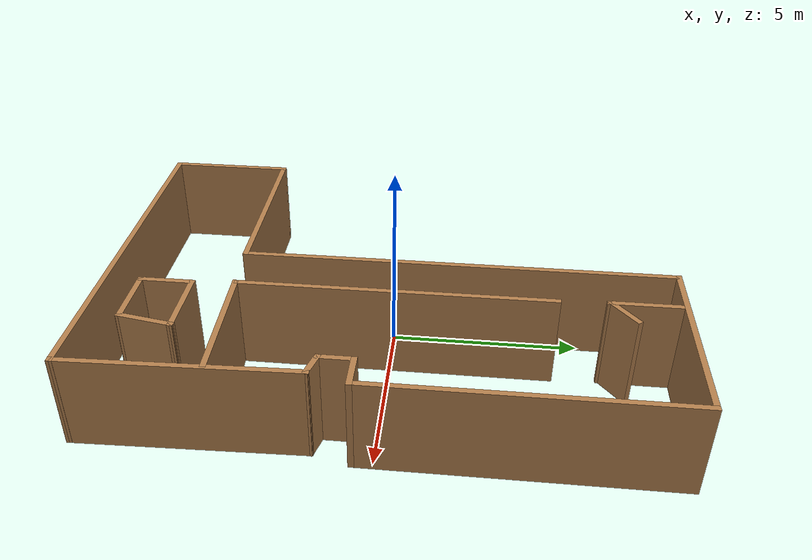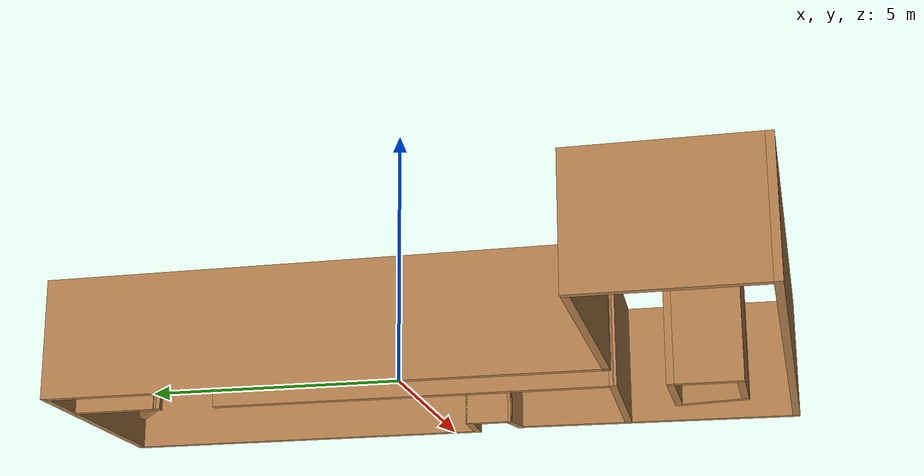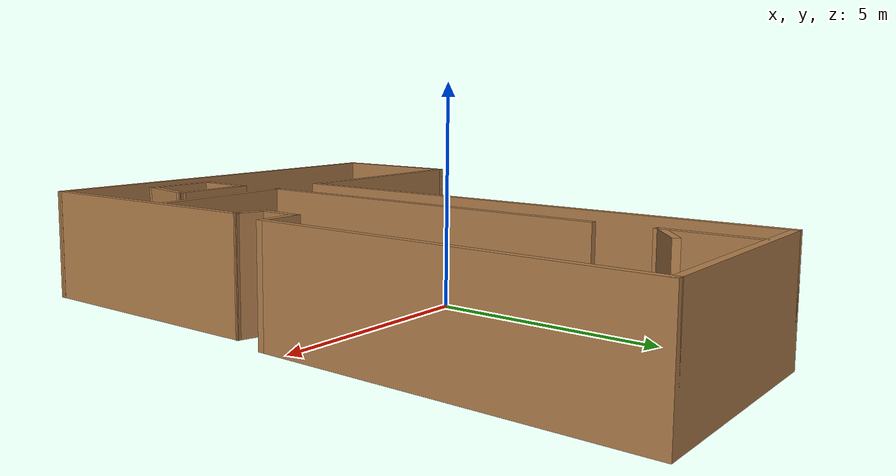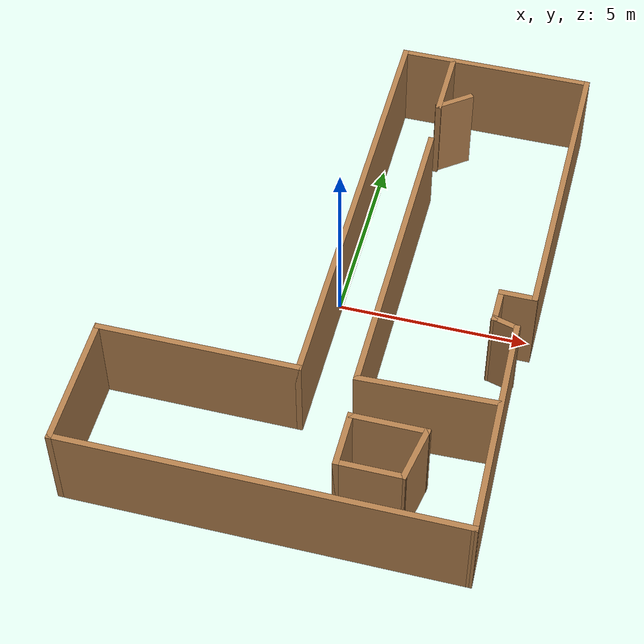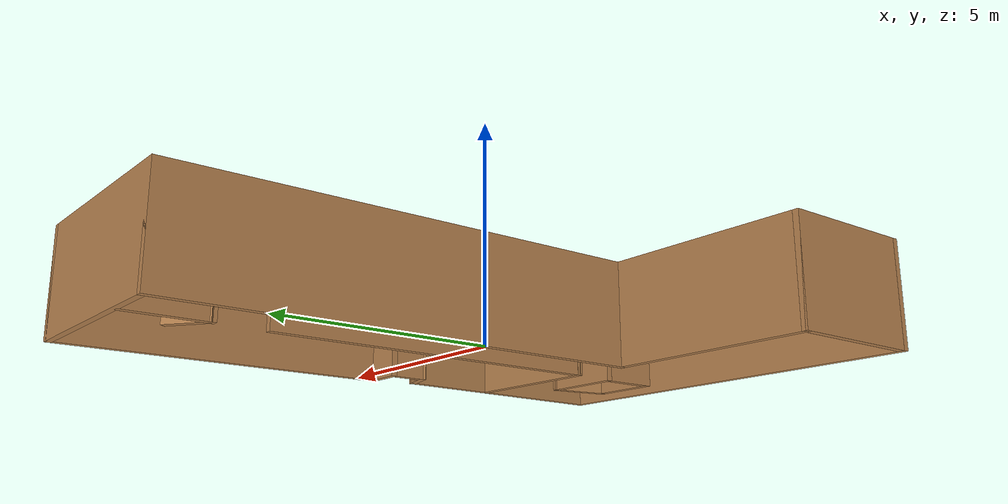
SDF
<?xml version='1.0'?>
<sdf version='1.6'>
  <model name='map_25'>
    <link name='Wall_0'>
      <pose frame=''>-0.05 -7.34892 0 0 -0 3.14159</pose>
      <self_collide>0</self_collide>
      <enable_wind>0</enable_wind>
      <kinematic>0</kinematic>
      <visual name='Wall_0_Visual'>
        <pose frame=''>0 0 1.25 0 -0 0</pose>
        <geometry>
          <box>
            <size>10.25 0.15 2.5</size>
          </box>
        </geometry>
        <material>
          <script>
            <uri>file://media/materials/scripts/gazebo.material</uri>
            <name>Gazebo/Wood</name>
          </script>
          <ambient>1 1 1 1</ambient>
          <shader type='pixel'/>
        </material>
        <meta>
          <layer>0</layer>
        </meta>
        <transparency>0</transparency>
        <cast_shadows>1</cast_shadows>
      </visual>
      <collision name='Wall_0_Collision'>
        <laser_retro>0</laser_retro>
        <max_contacts>10</max_contacts>
        <pose frame=''>0 0 1.25 0 -0 0</pose>
        <geometry>
          <box>
            <size>10.25 0.15 2.5</size>
          </box>
        </geometry>
        <surface>
          <friction>
            <ode>
              <mu>1</mu>
              <mu2>1</mu2>
              <fdir1>0 0 0</fdir1>
              <slip1>0</slip1>
              <slip2>0</slip2>
            </ode>
            <torsional>
              <coefficient>1</coefficient>
              <patch_radius>0</patch_radius>
              <surface_radius>0</surface_radius>
              <use_patch_radius>1</use_patch_radius>
              <ode>
                <slip>0</slip>
              </ode>
            </torsional>
          </friction>
          <bounce>
            <restitution_coefficient>0</restitution_coefficient>
            <threshold>1e+06</threshold>
          </bounce>
          <contact>
            <collide_without_contact>0</collide_without_contact>
            <collide_without_contact_bitmask>1</collide_without_contact_bitmask>
            <collide_bitmask>1</collide_bitmask>
            <ode>
              <soft_cfm>0</soft_cfm>
              <soft_erp>0.2</soft_erp>
              <kp>1e+13</kp>
              <kd>1</kd>
              <max_vel>0.01</max_vel>
              <min_depth>0</min_depth>
            </ode>
            <bullet>
              <split_impulse>1</split_impulse>
              <split_impulse_penetration_threshold>-0.01</split_impulse_penetration_threshold>
              <soft_cfm>0</soft_cfm>
              <soft_erp>0.2</soft_erp>
              <kp>1e+13</kp>
              <kd>1</kd>
            </bullet>
          </contact>
        </surface>
      </collision>
    </link>
    <link name='Wall_1'>
      <pose frame=''>-5.1 -5.67392 0 0 -0 1.5708</pose>
      <self_collide>0</self_collide>
      <enable_wind>0</enable_wind>
      <kinematic>0</kinematic>
      <visual name='Wall_1_Visual'>
        <pose frame=''>0 0 1.25 0 -0 0</pose>
        <geometry>
          <box>
            <size>3.5 0.15 2.5</size>
          </box>
        </geometry>
        <material>
          <script>
            <uri>file://media/materials/scripts/gazebo.material</uri>
            <name>Gazebo/Wood</name>
          </script>
          <ambient>1 1 1 1</ambient>
          <shader type='pixel'/>
        </material>
        <meta>
          <layer>0</layer>
        </meta>
        <transparency>0</transparency>
        <cast_shadows>1</cast_shadows>
      </visual>
      <collision name='Wall_1_Collision'>
        <laser_retro>0</laser_retro>
        <max_contacts>10</max_contacts>
        <pose frame=''>0 0 1.25 0 -0 0</pose>
        <geometry>
          <box>
            <size>3.5 0.15 2.5</size>
          </box>
        </geometry>
        <surface>
          <friction>
            <ode>
              <mu>1</mu>
              <mu2>1</mu2>
              <fdir1>0 0 0</fdir1>
              <slip1>0</slip1>
              <slip2>0</slip2>
            </ode>
            <torsional>
              <coefficient>1</coefficient>
              <patch_radius>0</patch_radius>
              <surface_radius>0</surface_radius>
              <use_patch_radius>1</use_patch_radius>
              <ode>
                <slip>0</slip>
              </ode>
            </torsional>
          </friction>
          <bounce>
            <restitution_coefficient>0</restitution_coefficient>
            <threshold>1e+06</threshold>
          </bounce>
          <contact>
            <collide_without_contact>0</collide_without_contact>
            <collide_without_contact_bitmask>1</collide_without_contact_bitmask>
            <collide_bitmask>1</collide_bitmask>
            <ode>
              <soft_cfm>0</soft_cfm>
              <soft_erp>0.2</soft_erp>
              <kp>1e+13</kp>
              <kd>1</kd>
              <max_vel>0.01</max_vel>
              <min_depth>0</min_depth>
            </ode>
            <bullet>
              <split_impulse>1</split_impulse>
              <split_impulse_penetration_threshold>-0.01</split_impulse_penetration_threshold>
              <soft_cfm>0</soft_cfm>
              <soft_erp>0.2</soft_erp>
              <kp>1e+13</kp>
              <kd>1</kd>
            </bullet>
          </contact>
        </surface>
      </collision>
    </link>
    <link name='Wall_14'>
      <pose frame=''>1.41533 0.157617 0 0 0 -1.5708</pose>
      <self_collide>0</self_collide>
      <enable_wind>0</enable_wind>
      <kinematic>0</kinematic>
      <visual name='Wall_14_Visual'>
        <pose frame=''>0 0 1.25 0 -0 0</pose>
        <geometry>
          <box>
            <size>8.25 0.15 2.5</size>
          </box>
        </geometry>
        <material>
          <script>
            <uri>file://media/materials/scripts/gazebo.material</uri>
            <name>Gazebo/Wood</name>
          </script>
          <ambient>1 1 1 1</ambient>
          <shader type='pixel'/>
        </material>
        <meta>
          <layer>0</layer>
        </meta>
        <transparency>0</transparency>
        <cast_shadows>1</cast_shadows>
      </visual>
      <collision name='Wall_14_Collision'>
        <laser_retro>0</laser_retro>
        <max_contacts>10</max_contacts>
        <pose frame=''>0 0 1.25 0 -0 0</pose>
        <geometry>
          <box>
            <size>8.25 0.15 2.5</size>
          </box>
        </geometry>
        <surface>
          <friction>
            <ode>
              <mu>1</mu>
              <mu2>1</mu2>
              <fdir1>0 0 0</fdir1>
              <slip1>0</slip1>
              <slip2>0</slip2>
            </ode>
            <torsional>
              <coefficient>1</coefficient>
              <patch_radius>0</patch_radius>
              <surface_radius>0</surface_radius>
              <use_patch_radius>1</use_patch_radius>
              <ode>
                <slip>0</slip>
              </ode>
            </torsional>
          </friction>
          <bounce>
            <restitution_coefficient>0</restitution_coefficient>
            <threshold>1e+06</threshold>
          </bounce>
          <contact>
            <collide_without_contact>0</collide_without_contact>
            <collide_without_contact_bitmask>1</collide_without_contact_bitmask>
            <collide_bitmask>1</collide_bitmask>
            <ode>
              <soft_cfm>0</soft_cfm>
              <soft_erp>0.2</soft_erp>
              <kp>1e+13</kp>
              <kd>1</kd>
              <max_vel>0.01</max_vel>
              <min_depth>0</min_depth>
            </ode>
            <bullet>
              <split_impulse>1</split_impulse>
              <split_impulse_penetration_threshold>-0.01</split_impulse_penetration_threshold>
              <soft_cfm>0</soft_cfm>
              <soft_erp>0.2</soft_erp>
              <kp>1e+13</kp>
              <kd>1</kd>
            </bullet>
          </contact>
        </surface>
      </collision>
    </link>
    <link name='Wall_15'>
      <pose frame=''>3.12632 -3.89238 0 0 -0 0.03126</pose>
      <self_collide>0</self_collide>
      <enable_wind>0</enable_wind>
      <kinematic>0</kinematic>
      <visual name='Wall_15_Visual'>
        <pose frame=''>0 0 1.25 0 -0 0</pose>
        <geometry>
          <box>
            <size>3.57365 0.15 2.5</size>
          </box>
        </geometry>
        <material>
          <script>
            <uri>file://media/materials/scripts/gazebo.material</uri>
            <name>Gazebo/Wood</name>
          </script>
          <ambient>1 1 1 1</ambient>
          <shader type='pixel'/>
        </material>
        <meta>
          <layer>0</layer>
        </meta>
        <transparency>0</transparency>
        <cast_shadows>1</cast_shadows>
      </visual>
      <collision name='Wall_15_Collision'>
        <laser_retro>0</laser_retro>
        <max_contacts>10</max_contacts>
        <pose frame=''>0 0 1.25 0 -0 0</pose>
        <geometry>
          <box>
            <size>3.57365 0.15 2.5</size>
          </box>
        </geometry>
        <surface>
          <friction>
            <ode>
              <mu>1</mu>
              <mu2>1</mu2>
              <fdir1>0 0 0</fdir1>
              <slip1>0</slip1>
              <slip2>0</slip2>
            </ode>
            <torsional>
              <coefficient>1</coefficient>
              <patch_radius>0</patch_radius>
              <surface_radius>0</surface_radius>
              <use_patch_radius>1</use_patch_radius>
              <ode>
                <slip>0</slip>
              </ode>
            </torsional>
          </friction>
          <bounce>
            <restitution_coefficient>0</restitution_coefficient>
            <threshold>1e+06</threshold>
          </bounce>
          <contact>
            <collide_without_contact>0</collide_without_contact>
            <collide_without_contact_bitmask>1</collide_without_contact_bitmask>
            <collide_bitmask>1</collide_bitmask>
            <ode>
              <soft_cfm>0</soft_cfm>
              <soft_erp>0.2</soft_erp>
              <kp>1e+13</kp>
              <kd>1</kd>
              <max_vel>0.01</max_vel>
              <min_depth>0</min_depth>
            </ode>
            <bullet>
              <split_impulse>1</split_impulse>
              <split_impulse_penetration_threshold>-0.01</split_impulse_penetration_threshold>
              <soft_cfm>0</soft_cfm>
              <soft_erp>0.2</soft_erp>
              <kp>1e+13</kp>
              <kd>1</kd>
            </bullet>
          </contact>
        </surface>
      </collision>
    </link>
    <link name='Wall_2'>
      <pose frame=''>-2.55 -3.99892 0 0 -0 0</pose>
      <self_collide>0</self_collide>
      <enable_wind>0</enable_wind>
      <kinematic>0</kinematic>
      <visual name='Wall_2_Visual'>
        <pose frame=''>0 0 1.25 0 -0 0</pose>
        <geometry>
          <box>
            <size>5.25 0.15 2.5</size>
          </box>
        </geometry>
        <material>
          <script>
            <uri>file://media/materials/scripts/gazebo.material</uri>
            <name>Gazebo/Wood</name>
          </script>
          <ambient>1 1 1 1</ambient>
          <shader type='pixel'/>
        </material>
        <meta>
          <layer>0</layer>
        </meta>
        <transparency>0</transparency>
        <cast_shadows>1</cast_shadows>
      </visual>
      <collision name='Wall_2_Collision'>
        <laser_retro>0</laser_retro>
        <max_contacts>10</max_contacts>
        <pose frame=''>0 0 1.25 0 -0 0</pose>
        <geometry>
          <box>
            <size>5.25 0.15 2.5</size>
          </box>
        </geometry>
        <surface>
          <friction>
            <ode>
              <mu>1</mu>
              <mu2>1</mu2>
              <fdir1>0 0 0</fdir1>
              <slip1>0</slip1>
              <slip2>0</slip2>
            </ode>
            <torsional>
              <coefficient>1</coefficient>
              <patch_radius>0</patch_radius>
              <surface_radius>0</surface_radius>
              <use_patch_radius>1</use_patch_radius>
              <ode>
                <slip>0</slip>
              </ode>
            </torsional>
          </friction>
          <bounce>
            <restitution_coefficient>0</restitution_coefficient>
            <threshold>1e+06</threshold>
          </bounce>
          <contact>
            <collide_without_contact>0</collide_without_contact>
            <collide_without_contact_bitmask>1</collide_without_contact_bitmask>
            <collide_bitmask>1</collide_bitmask>
            <ode>
              <soft_cfm>0</soft_cfm>
              <soft_erp>0.2</soft_erp>
              <kp>1e+13</kp>
              <kd>1</kd>
              <max_vel>0.01</max_vel>
              <min_depth>0</min_depth>
            </ode>
            <bullet>
              <split_impulse>1</split_impulse>
              <split_impulse_penetration_threshold>-0.01</split_impulse_penetration_threshold>
              <soft_cfm>0</soft_cfm>
              <soft_erp>0.2</soft_erp>
              <kp>1e+13</kp>
              <kd>1</kd>
            </bullet>
          </contact>
        </surface>
      </collision>
    </link>
    <link name='Wall_29'>
      <pose frame=''>1.35601 6.37111 0 0 0 -1.5708</pose>
      <self_collide>0</self_collide>
      <enable_wind>0</enable_wind>
      <kinematic>0</kinematic>
      <visual name='Wall_29_Visual'>
        <pose frame=''>0 0 1.25 0 -0 0</pose>
        <geometry>
          <box>
            <size>1.92214 0.15 2.5</size>
          </box>
        </geometry>
        <material>
          <script>
            <uri>file://media/materials/scripts/gazebo.material</uri>
            <name>Gazebo/Wood</name>
          </script>
          <ambient>1 1 1 1</ambient>
          <shader type='pixel'/>
        </material>
        <meta>
          <layer>0</layer>
        </meta>
        <transparency>0</transparency>
        <cast_shadows>1</cast_shadows>
      </visual>
      <collision name='Wall_29_Collision'>
        <laser_retro>0</laser_retro>
        <max_contacts>10</max_contacts>
        <pose frame=''>0 0 1.25 0 -0 0</pose>
        <geometry>
          <box>
            <size>1.92214 0.15 2.5</size>
          </box>
        </geometry>
        <surface>
          <friction>
            <ode>
              <mu>1</mu>
              <mu2>1</mu2>
              <fdir1>0 0 0</fdir1>
              <slip1>0</slip1>
              <slip2>0</slip2>
            </ode>
            <torsional>
              <coefficient>1</coefficient>
              <patch_radius>0</patch_radius>
              <surface_radius>0</surface_radius>
              <use_patch_radius>1</use_patch_radius>
              <ode>
                <slip>0</slip>
              </ode>
            </torsional>
          </friction>
          <bounce>
            <restitution_coefficient>0</restitution_coefficient>
            <threshold>1e+06</threshold>
          </bounce>
          <contact>
            <collide_without_contact>0</collide_without_contact>
            <collide_without_contact_bitmask>1</collide_without_contact_bitmask>
            <collide_bitmask>1</collide_bitmask>
            <ode>
              <soft_cfm>0</soft_cfm>
              <soft_erp>0.2</soft_erp>
              <kp>1e+13</kp>
              <kd>1</kd>
              <max_vel>0.01</max_vel>
              <min_depth>0</min_depth>
            </ode>
            <bullet>
              <split_impulse>1</split_impulse>
              <split_impulse_penetration_threshold>-0.01</split_impulse_penetration_threshold>
              <soft_cfm>0</soft_cfm>
              <soft_erp>0.2</soft_erp>
              <kp>1e+13</kp>
              <kd>1</kd>
            </bullet>
          </contact>
        </surface>
      </collision>
    </link>
    <link name='Wall_3'>
      <pose frame=''>0 1.67608 0 0 -0 1.5708</pose>
      <self_collide>0</self_collide>
      <enable_wind>0</enable_wind>
      <kinematic>0</kinematic>
      <visual name='Wall_3_Visual'>
        <pose frame=''>0 0 1.25 0 -0 0</pose>
        <geometry>
          <box>
            <size>11.5 0.15 2.5</size>
          </box>
        </geometry>
        <material>
          <script>
            <uri>file://media/materials/scripts/gazebo.material</uri>
            <name>Gazebo/Wood</name>
          </script>
          <ambient>1 1 1 1</ambient>
          <shader type='pixel'/>
        </material>
        <meta>
          <layer>0</layer>
        </meta>
        <transparency>0</transparency>
        <cast_shadows>1</cast_shadows>
      </visual>
      <collision name='Wall_3_Collision'>
        <laser_retro>0</laser_retro>
        <max_contacts>10</max_contacts>
        <pose frame=''>0 0 1.25 0 -0 0</pose>
        <geometry>
          <box>
            <size>11.5 0.15 2.5</size>
          </box>
        </geometry>
        <surface>
          <friction>
            <ode>
              <mu>1</mu>
              <mu2>1</mu2>
              <fdir1>0 0 0</fdir1>
              <slip1>0</slip1>
              <slip2>0</slip2>
            </ode>
            <torsional>
              <coefficient>1</coefficient>
              <patch_radius>0</patch_radius>
              <surface_radius>0</surface_radius>
              <use_patch_radius>1</use_patch_radius>
              <ode>
                <slip>0</slip>
              </ode>
            </torsional>
          </friction>
          <bounce>
            <restitution_coefficient>0</restitution_coefficient>
            <threshold>1e+06</threshold>
          </bounce>
          <contact>
            <collide_without_contact>0</collide_without_contact>
            <collide_without_contact_bitmask>1</collide_without_contact_bitmask>
            <collide_bitmask>1</collide_bitmask>
            <ode>
              <soft_cfm>0</soft_cfm>
              <soft_erp>0.2</soft_erp>
              <kp>1e+13</kp>
              <kd>1</kd>
              <max_vel>0.01</max_vel>
              <min_depth>0</min_depth>
            </ode>
            <bullet>
              <split_impulse>1</split_impulse>
              <split_impulse_penetration_threshold>-0.01</split_impulse_penetration_threshold>
              <soft_cfm>0</soft_cfm>
              <soft_erp>0.2</soft_erp>
              <kp>1e+13</kp>
              <kd>1</kd>
            </bullet>
          </contact>
        </surface>
      </collision>
    </link>
    <link name='Wall_30'>
      <pose frame=''>1.72407 5.80307 0 0 -0 0.655241</pose>
      <self_collide>0</self_collide>
      <enable_wind>0</enable_wind>
      <kinematic>0</kinematic>
      <visual name='Wall_30_Visual'>
        <pose frame=''>0 0 1.25 0 -0 0</pose>
        <geometry>
          <box>
            <size>1.07839 0.15 2.5</size>
          </box>
        </geometry>
        <material>
          <script>
            <uri>file://media/materials/scripts/gazebo.material</uri>
            <name>Gazebo/Wood</name>
          </script>
          <ambient>1 1 1 1</ambient>
          <shader type='pixel'/>
        </material>
        <meta>
          <layer>0</layer>
        </meta>
        <transparency>0</transparency>
        <cast_shadows>1</cast_shadows>
      </visual>
      <collision name='Wall_30_Collision'>
        <laser_retro>0</laser_retro>
        <max_contacts>10</max_contacts>
        <pose frame=''>0 0 1.25 0 -0 0</pose>
        <geometry>
          <box>
            <size>1.07839 0.15 2.5</size>
          </box>
        </geometry>
        <surface>
          <friction>
            <ode>
              <mu>1</mu>
              <mu2>1</mu2>
              <fdir1>0 0 0</fdir1>
              <slip1>0</slip1>
              <slip2>0</slip2>
            </ode>
            <torsional>
              <coefficient>1</coefficient>
              <patch_radius>0</patch_radius>
              <surface_radius>0</surface_radius>
              <use_patch_radius>1</use_patch_radius>
              <ode>
                <slip>0</slip>
              </ode>
            </torsional>
          </friction>
          <bounce>
            <restitution_coefficient>0</restitution_coefficient>
            <threshold>1e+06</threshold>
          </bounce>
          <contact>
            <collide_without_contact>0</collide_without_contact>
            <collide_without_contact_bitmask>1</collide_without_contact_bitmask>
            <collide_bitmask>1</collide_bitmask>
            <ode>
              <soft_cfm>0</soft_cfm>
              <soft_erp>0.2</soft_erp>
              <kp>1e+13</kp>
              <kd>1</kd>
              <max_vel>0.01</max_vel>
              <min_depth>0</min_depth>
            </ode>
            <bullet>
              <split_impulse>1</split_impulse>
              <split_impulse_penetration_threshold>-0.01</split_impulse_penetration_threshold>
              <soft_cfm>0</soft_cfm>
              <soft_erp>0.2</soft_erp>
              <kp>1e+13</kp>
              <kd>1</kd>
            </bullet>
          </contact>
        </surface>
      </collision>
    </link>
    <link name='Wall_32'>
      <pose frame=''>2.46009 -5.04355 0 0 -0 3.14159</pose>
      <self_collide>0</self_collide>
      <enable_wind>0</enable_wind>
      <kinematic>0</kinematic>
      <visual name='Wall_32_Visual'>
        <pose frame=''>0 0 1.25 0 -0 0</pose>
        <geometry>
          <box>
            <size>2 0.15 2.5</size>
          </box>
        </geometry>
        <material>
          <script>
            <uri>file://media/materials/scripts/gazebo.material</uri>
            <name>Gazebo/Wood</name>
          </script>
          <ambient>1 1 1 1</ambient>
          <shader type='pixel'/>
        </material>
        <meta>
          <layer>0</layer>
        </meta>
        <transparency>0</transparency>
        <cast_shadows>1</cast_shadows>
      </visual>
      <collision name='Wall_32_Collision'>
        <laser_retro>0</laser_retro>
        <max_contacts>10</max_contacts>
        <pose frame=''>0 0 1.25 0 -0 0</pose>
        <geometry>
          <box>
            <size>2 0.15 2.5</size>
          </box>
        </geometry>
        <surface>
          <friction>
            <ode>
              <mu>1</mu>
              <mu2>1</mu2>
              <fdir1>0 0 0</fdir1>
              <slip1>0</slip1>
              <slip2>0</slip2>
            </ode>
            <torsional>
              <coefficient>1</coefficient>
              <patch_radius>0</patch_radius>
              <surface_radius>0</surface_radius>
              <use_patch_radius>1</use_patch_radius>
              <ode>
                <slip>0</slip>
              </ode>
            </torsional>
          </friction>
          <bounce>
            <restitution_coefficient>0</restitution_coefficient>
            <threshold>1e+06</threshold>
          </bounce>
          <contact>
            <collide_without_contact>0</collide_without_contact>
            <collide_without_contact_bitmask>1</collide_without_contact_bitmask>
            <collide_bitmask>1</collide_bitmask>
            <ode>
              <soft_cfm>0</soft_cfm>
              <soft_erp>0.2</soft_erp>
              <kp>1e+13</kp>
              <kd>1</kd>
              <max_vel>0.01</max_vel>
              <min_depth>0</min_depth>
            </ode>
            <bullet>
              <split_impulse>1</split_impulse>
              <split_impulse_penetration_threshold>-0.01</split_impulse_penetration_threshold>
              <soft_cfm>0</soft_cfm>
              <soft_erp>0.2</soft_erp>
              <kp>1e+13</kp>
              <kd>1</kd>
            </bullet>
          </contact>
        </surface>
      </collision>
    </link>
    <link name='Wall_33'>
      <pose frame=''>1.53509 -5.71855 0 0 0 -1.5708</pose>
      <self_collide>0</self_collide>
      <enable_wind>0</enable_wind>
      <kinematic>0</kinematic>
      <visual name='Wall_33_Visual'>
        <pose frame=''>0 0 1.25 0 -0 0</pose>
        <geometry>
          <box>
            <size>1.5 0.15 2.5</size>
          </box>
        </geometry>
        <material>
          <script>
            <uri>file://media/materials/scripts/gazebo.material</uri>
            <name>Gazebo/Wood</name>
          </script>
          <ambient>1 1 1 1</ambient>
          <shader type='pixel'/>
        </material>
        <meta>
          <layer>0</layer>
        </meta>
        <transparency>0</transparency>
        <cast_shadows>1</cast_shadows>
      </visual>
      <collision name='Wall_33_Collision'>
        <laser_retro>0</laser_retro>
        <max_contacts>10</max_contacts>
        <pose frame=''>0 0 1.25 0 -0 0</pose>
        <geometry>
          <box>
            <size>1.5 0.15 2.5</size>
          </box>
        </geometry>
        <surface>
          <friction>
            <ode>
              <mu>1</mu>
              <mu2>1</mu2>
              <fdir1>0 0 0</fdir1>
              <slip1>0</slip1>
              <slip2>0</slip2>
            </ode>
            <torsional>
              <coefficient>1</coefficient>
              <patch_radius>0</patch_radius>
              <surface_radius>0</surface_radius>
              <use_patch_radius>1</use_patch_radius>
              <ode>
                <slip>0</slip>
              </ode>
            </torsional>
          </friction>
          <bounce>
            <restitution_coefficient>0</restitution_coefficient>
            <threshold>1e+06</threshold>
          </bounce>
          <contact>
            <collide_without_contact>0</collide_without_contact>
            <collide_without_contact_bitmask>1</collide_without_contact_bitmask>
            <collide_bitmask>1</collide_bitmask>
            <ode>
              <soft_cfm>0</soft_cfm>
              <soft_erp>0.2</soft_erp>
              <kp>1e+13</kp>
              <kd>1</kd>
              <max_vel>0.01</max_vel>
              <min_depth>0</min_depth>
            </ode>
            <bullet>
              <split_impulse>1</split_impulse>
              <split_impulse_penetration_threshold>-0.01</split_impulse_penetration_threshold>
              <soft_cfm>0</soft_cfm>
              <soft_erp>0.2</soft_erp>
              <kp>1e+13</kp>
              <kd>1</kd>
            </bullet>
          </contact>
        </surface>
      </collision>
    </link>
    <link name='Wall_34'>
      <pose frame=''>2.33509 -6.39355 0 0 -0 0</pose>
      <self_collide>0</self_collide>
      <enable_wind>0</enable_wind>
      <kinematic>0</kinematic>
      <visual name='Wall_34_Visual'>
        <pose frame=''>0 0 1.25 0 -0 0</pose>
        <geometry>
          <box>
            <size>1.75 0.15 2.5</size>
          </box>
        </geometry>
        <material>
          <script>
            <uri>file://media/materials/scripts/gazebo.material</uri>
            <name>Gazebo/Wood</name>
          </script>
          <ambient>1 1 1 1</ambient>
          <shader type='pixel'/>
        </material>
        <meta>
          <layer>0</layer>
        </meta>
        <transparency>0</transparency>
        <cast_shadows>1</cast_shadows>
      </visual>
      <collision name='Wall_34_Collision'>
        <laser_retro>0</laser_retro>
        <max_contacts>10</max_contacts>
        <pose frame=''>0 0 1.25 0 -0 0</pose>
        <geometry>
          <box>
            <size>1.75 0.15 2.5</size>
          </box>
        </geometry>
        <surface>
          <friction>
            <ode>
              <mu>1</mu>
              <mu2>1</mu2>
              <fdir1>0 0 0</fdir1>
              <slip1>0</slip1>
              <slip2>0</slip2>
            </ode>
            <torsional>
              <coefficient>1</coefficient>
              <patch_radius>0</patch_radius>
              <surface_radius>0</surface_radius>
              <use_patch_radius>1</use_patch_radius>
              <ode>
                <slip>0</slip>
              </ode>
            </torsional>
          </friction>
          <bounce>
            <restitution_coefficient>0</restitution_coefficient>
            <threshold>1e+06</threshold>
          </bounce>
          <contact>
            <collide_without_contact>0</collide_without_contact>
            <collide_without_contact_bitmask>1</collide_without_contact_bitmask>
            <collide_bitmask>1</collide_bitmask>
            <ode>
              <soft_cfm>0</soft_cfm>
              <soft_erp>0.2</soft_erp>
              <kp>1e+13</kp>
              <kd>1</kd>
              <max_vel>0.01</max_vel>
              <min_depth>0</min_depth>
            </ode>
            <bullet>
              <split_impulse>1</split_impulse>
              <split_impulse_penetration_threshold>-0.01</split_impulse_penetration_threshold>
              <soft_cfm>0</soft_cfm>
              <soft_erp>0.2</soft_erp>
              <kp>1e+13</kp>
              <kd>1</kd>
            </bullet>
          </contact>
        </surface>
      </collision>
    </link>
    <link name='Wall_35'>
      <pose frame=''>3.26009 -5.71855 0 0 -0 1.38769</pose>
      <self_collide>0</self_collide>
      <enable_wind>0</enable_wind>
      <kinematic>0</kinematic>
      <visual name='Wall_35_Visual'>
        <pose frame=''>0 0 1.25 0 -0 0</pose>
        <geometry>
          <box>
            <size>1.52295 0.15 2.5</size>
          </box>
        </geometry>
        <material>
          <script>
            <uri>file://media/materials/scripts/gazebo.material</uri>
            <name>Gazebo/Wood</name>
          </script>
          <ambient>1 1 1 1</ambient>
          <shader type='pixel'/>
        </material>
        <meta>
          <layer>0</layer>
        </meta>
        <transparency>0</transparency>
        <cast_shadows>1</cast_shadows>
      </visual>
      <collision name='Wall_35_Collision'>
        <laser_retro>0</laser_retro>
        <max_contacts>10</max_contacts>
        <pose frame=''>0 0 1.25 0 -0 0</pose>
        <geometry>
          <box>
            <size>1.52295 0.15 2.5</size>
          </box>
        </geometry>
        <surface>
          <friction>
            <ode>
              <mu>1</mu>
              <mu2>1</mu2>
              <fdir1>0 0 0</fdir1>
              <slip1>0</slip1>
              <slip2>0</slip2>
            </ode>
            <torsional>
              <coefficient>1</coefficient>
              <patch_radius>0</patch_radius>
              <surface_radius>0</surface_radius>
              <use_patch_radius>1</use_patch_radius>
              <ode>
                <slip>0</slip>
              </ode>
            </torsional>
          </friction>
          <bounce>
            <restitution_coefficient>0</restitution_coefficient>
            <threshold>1e+06</threshold>
          </bounce>
          <contact>
            <collide_without_contact>0</collide_without_contact>
            <collide_without_contact_bitmask>1</collide_without_contact_bitmask>
            <collide_bitmask>1</collide_bitmask>
            <ode>
              <soft_cfm>0</soft_cfm>
              <soft_erp>0.2</soft_erp>
              <kp>1e+13</kp>
              <kd>1</kd>
              <max_vel>0.01</max_vel>
              <min_depth>0</min_depth>
            </ode>
            <bullet>
              <split_impulse>1</split_impulse>
              <split_impulse_penetration_threshold>-0.01</split_impulse_penetration_threshold>
              <soft_cfm>0</soft_cfm>
              <soft_erp>0.2</soft_erp>
              <kp>1e+13</kp>
              <kd>1</kd>
            </bullet>
          </contact>
        </surface>
      </collision>
    </link>
    <link name='Wall_4'>
      <pose frame=''>2.55 7.35108 0 0 -0 0</pose>
      <self_collide>0</self_collide>
      <enable_wind>0</enable_wind>
      <kinematic>0</kinematic>
      <visual name='Wall_4_Visual'>
        <pose frame=''>0 0 1.25 0 -0 0</pose>
        <geometry>
          <box>
            <size>5.25 0.15 2.5</size>
          </box>
        </geometry>
        <material>
          <script>
            <uri>file://media/materials/scripts/gazebo.material</uri>
            <name>Gazebo/Wood</name>
          </script>
          <ambient>1 1 1 1</ambient>
          <shader type='pixel'/>
        </material>
        <meta>
          <layer>0</layer>
        </meta>
        <transparency>0</transparency>
        <cast_shadows>1</cast_shadows>
      </visual>
      <collision name='Wall_4_Collision'>
        <laser_retro>0</laser_retro>
        <max_contacts>10</max_contacts>
        <pose frame=''>0 0 1.25 0 -0 0</pose>
        <geometry>
          <box>
            <size>5.25 0.15 2.5</size>
          </box>
        </geometry>
        <surface>
          <friction>
            <ode>
              <mu>1</mu>
              <mu2>1</mu2>
              <fdir1>0 0 0</fdir1>
              <slip1>0</slip1>
              <slip2>0</slip2>
            </ode>
            <torsional>
              <coefficient>1</coefficient>
              <patch_radius>0</patch_radius>
              <surface_radius>0</surface_radius>
              <use_patch_radius>1</use_patch_radius>
              <ode>
                <slip>0</slip>
              </ode>
            </torsional>
          </friction>
          <bounce>
            <restitution_coefficient>0</restitution_coefficient>
            <threshold>1e+06</threshold>
          </bounce>
          <contact>
            <collide_without_contact>0</collide_without_contact>
            <collide_without_contact_bitmask>1</collide_without_contact_bitmask>
            <collide_bitmask>1</collide_bitmask>
            <ode>
              <soft_cfm>0</soft_cfm>
              <soft_erp>0.2</soft_erp>
              <kp>1e+13</kp>
              <kd>1</kd>
              <max_vel>0.01</max_vel>
              <min_depth>0</min_depth>
            </ode>
            <bullet>
              <split_impulse>1</split_impulse>
              <split_impulse_penetration_threshold>-0.01</split_impulse_penetration_threshold>
              <soft_cfm>0</soft_cfm>
              <soft_erp>0.2</soft_erp>
              <kp>1e+13</kp>
              <kd>1</kd>
            </bullet>
          </contact>
        </surface>
      </collision>
    </link>
    <link name='Wall_5'>
      <pose frame=''>5.1 3.42608 0 0 0 -1.5708</pose>
      <self_collide>0</self_collide>
      <enable_wind>0</enable_wind>
      <kinematic>0</kinematic>
      <visual name='Wall_5_Visual'>
        <pose frame=''>0 0 1.25 0 -0 0</pose>
        <geometry>
          <box>
            <size>8 0.15 2.5</size>
          </box>
        </geometry>
        <material>
          <script>
            <uri>file://media/materials/scripts/gazebo.material</uri>
            <name>Gazebo/Wood</name>
          </script>
          <ambient>1 1 1 1</ambient>
          <shader type='pixel'/>
        </material>
        <meta>
          <layer>0</layer>
        </meta>
        <transparency>0</transparency>
        <cast_shadows>1</cast_shadows>
      </visual>
      <collision name='Wall_5_Collision'>
        <laser_retro>0</laser_retro>
        <max_contacts>10</max_contacts>
        <pose frame=''>0 0 1.25 0 -0 0</pose>
        <geometry>
          <box>
            <size>8 0.15 2.5</size>
          </box>
        </geometry>
        <surface>
          <friction>
            <ode>
              <mu>1</mu>
              <mu2>1</mu2>
              <fdir1>0 0 0</fdir1>
              <slip1>0</slip1>
              <slip2>0</slip2>
            </ode>
            <torsional>
              <coefficient>1</coefficient>
              <patch_radius>0</patch_radius>
              <surface_radius>0</surface_radius>
              <use_patch_radius>1</use_patch_radius>
              <ode>
                <slip>0</slip>
              </ode>
            </torsional>
          </friction>
          <bounce>
            <restitution_coefficient>0</restitution_coefficient>
            <threshold>1e+06</threshold>
          </bounce>
          <contact>
            <collide_without_contact>0</collide_without_contact>
            <collide_without_contact_bitmask>1</collide_without_contact_bitmask>
            <collide_bitmask>1</collide_bitmask>
            <ode>
              <soft_cfm>0</soft_cfm>
              <soft_erp>0.2</soft_erp>
              <kp>1e+13</kp>
              <kd>1</kd>
              <max_vel>0.01</max_vel>
              <min_depth>0</min_depth>
            </ode>
            <bullet>
              <split_impulse>1</split_impulse>
              <split_impulse_penetration_threshold>-0.01</split_impulse_penetration_threshold>
              <soft_cfm>0</soft_cfm>
              <soft_erp>0.2</soft_erp>
              <kp>1e+13</kp>
              <kd>1</kd>
            </bullet>
          </contact>
        </surface>
      </collision>
    </link>
    <link name='Wall_6'>
      <pose frame=''>4.675 -0.498923 0 0 -0 3.14159</pose>
      <self_collide>0</self_collide>
      <enable_wind>0</enable_wind>
      <kinematic>0</kinematic>
      <visual name='Wall_6_Visual'>
        <pose frame=''>0 0 1.25 0 -0 0</pose>
        <geometry>
          <box>
            <size>1 0.15 2.5</size>
          </box>
        </geometry>
        <material>
          <script>
            <uri>file://media/materials/scripts/gazebo.material</uri>
            <name>Gazebo/Wood</name>
          </script>
          <ambient>1 1 1 1</ambient>
          <shader type='pixel'/>
        </material>
        <meta>
          <layer>0</layer>
        </meta>
        <transparency>0</transparency>
        <cast_shadows>1</cast_shadows>
      </visual>
      <collision name='Wall_6_Collision'>
        <laser_retro>0</laser_retro>
        <max_contacts>10</max_contacts>
        <pose frame=''>0 0 1.25 0 -0 0</pose>
        <geometry>
          <box>
            <size>1 0.15 2.5</size>
          </box>
        </geometry>
        <surface>
          <friction>
            <ode>
              <mu>1</mu>
              <mu2>1</mu2>
              <fdir1>0 0 0</fdir1>
              <slip1>0</slip1>
              <slip2>0</slip2>
            </ode>
            <torsional>
              <coefficient>1</coefficient>
              <patch_radius>0</patch_radius>
              <surface_radius>0</surface_radius>
              <use_patch_radius>1</use_patch_radius>
              <ode>
                <slip>0</slip>
              </ode>
            </torsional>
          </friction>
          <bounce>
            <restitution_coefficient>0</restitution_coefficient>
            <threshold>1e+06</threshold>
          </bounce>
          <contact>
            <collide_without_contact>0</collide_without_contact>
            <collide_without_contact_bitmask>1</collide_without_contact_bitmask>
            <collide_bitmask>1</collide_bitmask>
            <ode>
              <soft_cfm>0</soft_cfm>
              <soft_erp>0.2</soft_erp>
              <kp>1e+13</kp>
              <kd>1</kd>
              <max_vel>0.01</max_vel>
              <min_depth>0</min_depth>
            </ode>
            <bullet>
              <split_impulse>1</split_impulse>
              <split_impulse_penetration_threshold>-0.01</split_impulse_penetration_threshold>
              <soft_cfm>0</soft_cfm>
              <soft_erp>0.2</soft_erp>
              <kp>1e+13</kp>
              <kd>1</kd>
            </bullet>
          </contact>
        </surface>
      </collision>
    </link>
    <link name='Wall_7'>
      <pose frame=''>4.25 -0.923923 0 0 0 -1.5708</pose>
      <self_collide>0</self_collide>
      <enable_wind>0</enable_wind>
      <kinematic>0</kinematic>
      <visual name='Wall_7_Visual'>
        <pose frame=''>0 0 1.25 0 -0 0</pose>
        <geometry>
          <box>
            <size>1 0.15 2.5</size>
          </box>
        </geometry>
        <material>
          <script>
            <uri>file://media/materials/scripts/gazebo.material</uri>
            <name>Gazebo/Wood</name>
          </script>
          <ambient>1 1 1 1</ambient>
          <shader type='pixel'/>
        </material>
        <meta>
          <layer>0</layer>
        </meta>
        <transparency>0</transparency>
        <cast_shadows>1</cast_shadows>
      </visual>
      <collision name='Wall_7_Collision'>
        <laser_retro>0</laser_retro>
        <max_contacts>10</max_contacts>
        <pose frame=''>0 0 1.25 0 -0 0</pose>
        <geometry>
          <box>
            <size>1 0.15 2.5</size>
          </box>
        </geometry>
        <surface>
          <friction>
            <ode>
              <mu>1</mu>
              <mu2>1</mu2>
              <fdir1>0 0 0</fdir1>
              <slip1>0</slip1>
              <slip2>0</slip2>
            </ode>
            <torsional>
              <coefficient>1</coefficient>
              <patch_radius>0</patch_radius>
              <surface_radius>0</surface_radius>
              <use_patch_radius>1</use_patch_radius>
              <ode>
                <slip>0</slip>
              </ode>
            </torsional>
          </friction>
          <bounce>
            <restitution_coefficient>0</restitution_coefficient>
            <threshold>1e+06</threshold>
          </bounce>
          <contact>
            <collide_without_contact>0</collide_without_contact>
            <collide_without_contact_bitmask>1</collide_without_contact_bitmask>
            <collide_bitmask>1</collide_bitmask>
            <ode>
              <soft_cfm>0</soft_cfm>
              <soft_erp>0.2</soft_erp>
              <kp>1e+13</kp>
              <kd>1</kd>
              <max_vel>0.01</max_vel>
              <min_depth>0</min_depth>
            </ode>
            <bullet>
              <split_impulse>1</split_impulse>
              <split_impulse_penetration_threshold>-0.01</split_impulse_penetration_threshold>
              <soft_cfm>0</soft_cfm>
              <soft_erp>0.2</soft_erp>
              <kp>1e+13</kp>
              <kd>1</kd>
            </bullet>
          </contact>
        </surface>
      </collision>
    </link>
    <link name='Wall_8'>
      <pose frame=''>4.53978 -1.42657 0 0 0 -0.261799</pose>
      <self_collide>0</self_collide>
      <enable_wind>0</enable_wind>
      <kinematic>0</kinematic>
      <visual name='Wall_8_Visual'>
        <pose frame=''>0 0 1.25 0 -0 0</pose>
        <geometry>
          <box>
            <size>0.75 0.15 2.5</size>
          </box>
        </geometry>
        <material>
          <script>
            <uri>file://media/materials/scripts/gazebo.material</uri>
            <name>Gazebo/Wood</name>
          </script>
          <ambient>1 1 1 1</ambient>
          <shader type='pixel'/>
        </material>
        <meta>
          <layer>0</layer>
        </meta>
        <transparency>0</transparency>
        <cast_shadows>1</cast_shadows>
      </visual>
      <collision name='Wall_8_Collision'>
        <laser_retro>0</laser_retro>
        <max_contacts>10</max_contacts>
        <pose frame=''>0 0 1.25 0 -0 0</pose>
        <geometry>
          <box>
            <size>0.75 0.15 2.5</size>
          </box>
        </geometry>
        <surface>
          <friction>
            <ode>
              <mu>1</mu>
              <mu2>1</mu2>
              <fdir1>0 0 0</fdir1>
              <slip1>0</slip1>
              <slip2>0</slip2>
            </ode>
            <torsional>
              <coefficient>1</coefficient>
              <patch_radius>0</patch_radius>
              <surface_radius>0</surface_radius>
              <use_patch_radius>1</use_patch_radius>
              <ode>
                <slip>0</slip>
              </ode>
            </torsional>
          </friction>
          <bounce>
            <restitution_coefficient>0</restitution_coefficient>
            <threshold>1e+06</threshold>
          </bounce>
          <contact>
            <collide_without_contact>0</collide_without_contact>
            <collide_without_contact_bitmask>1</collide_without_contact_bitmask>
            <collide_bitmask>1</collide_bitmask>
            <ode>
              <soft_cfm>0</soft_cfm>
              <soft_erp>0.2</soft_erp>
              <kp>1e+13</kp>
              <kd>1</kd>
              <max_vel>0.01</max_vel>
              <min_depth>0</min_depth>
            </ode>
            <bullet>
              <split_impulse>1</split_impulse>
              <split_impulse_penetration_threshold>-0.01</split_impulse_penetration_threshold>
              <soft_cfm>0</soft_cfm>
              <soft_erp>0.2</soft_erp>
              <kp>1e+13</kp>
              <kd>1</kd>
            </bullet>
          </contact>
        </surface>
      </collision>
    </link>
    <link name='Wall_9'>
      <pose frame=''>4.91478 -4.42657 0 0 0 -1.54164</pose>
      <self_collide>0</self_collide>
      <enable_wind>0</enable_wind>
      <kinematic>0</kinematic>
      <visual name='Wall_9_Visual'>
        <pose frame=''>0 0 1.25 0 -0 0</pose>
        <geometry>
          <box>
            <size>5.99719 0.15 2.5</size>
          </box>
        </geometry>
        <material>
          <script>
            <uri>file://media/materials/scripts/gazebo.material</uri>
            <name>Gazebo/Wood</name>
          </script>
          <ambient>1 1 1 1</ambient>
          <shader type='pixel'/>
        </material>
        <meta>
          <layer>0</layer>
        </meta>
        <transparency>0</transparency>
        <cast_shadows>1</cast_shadows>
      </visual>
      <collision name='Wall_9_Collision'>
        <laser_retro>0</laser_retro>
        <max_contacts>10</max_contacts>
        <pose frame=''>0 0 1.25 0 -0 0</pose>
        <geometry>
          <box>
            <size>5.99719 0.15 2.5</size>
          </box>
        </geometry>
        <surface>
          <friction>
            <ode>
              <mu>1</mu>
              <mu2>1</mu2>
              <fdir1>0 0 0</fdir1>
              <slip1>0</slip1>
              <slip2>0</slip2>
            </ode>
            <torsional>
              <coefficient>1</coefficient>
              <patch_radius>0</patch_radius>
              <surface_radius>0</surface_radius>
              <use_patch_radius>1</use_patch_radius>
              <ode>
                <slip>0</slip>
              </ode>
            </torsional>
          </friction>
          <bounce>
            <restitution_coefficient>0</restitution_coefficient>
            <threshold>1e+06</threshold>
          </bounce>
          <contact>
            <collide_without_contact>0</collide_without_contact>
            <collide_without_contact_bitmask>1</collide_without_contact_bitmask>
            <collide_bitmask>1</collide_bitmask>
            <ode>
              <soft_cfm>0</soft_cfm>
              <soft_erp>0.2</soft_erp>
              <kp>1e+13</kp>
              <kd>1</kd>
              <max_vel>0.01</max_vel>
              <min_depth>0</min_depth>
            </ode>
            <bullet>
              <split_impulse>1</split_impulse>
              <split_impulse_penetration_threshold>-0.01</split_impulse_penetration_threshold>
              <soft_cfm>0</soft_cfm>
              <soft_erp>0.2</soft_erp>
              <kp>1e+13</kp>
              <kd>1</kd>
            </bullet>
          </contact>
        </surface>
      </collision>
    </link>
    <static>1</static>
    <allow_auto_disable>1</allow_auto_disable>
  </model>
</sdf>
